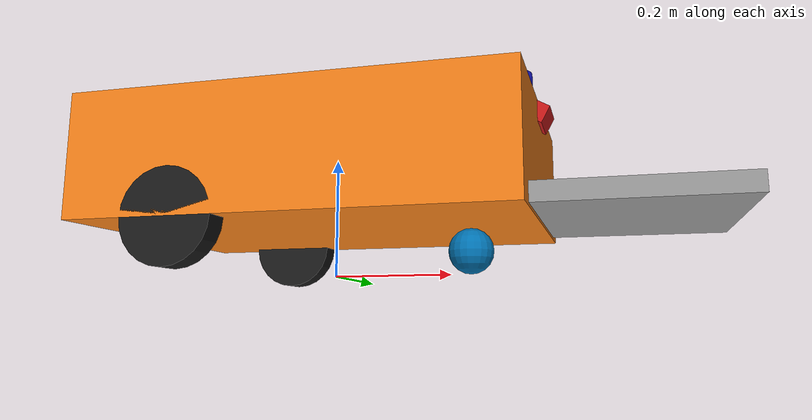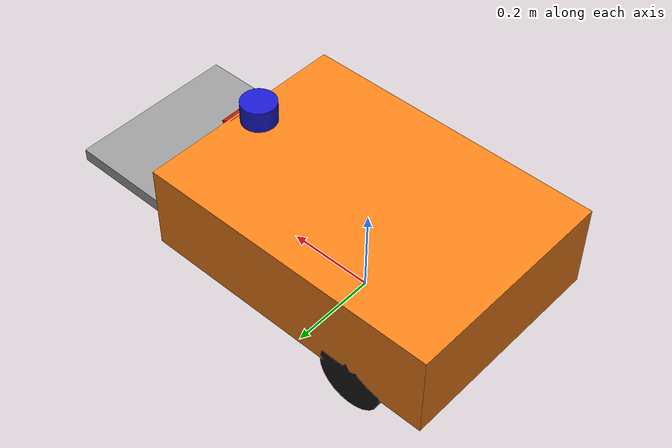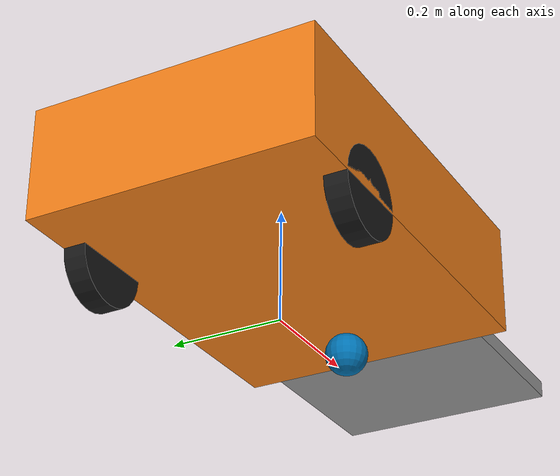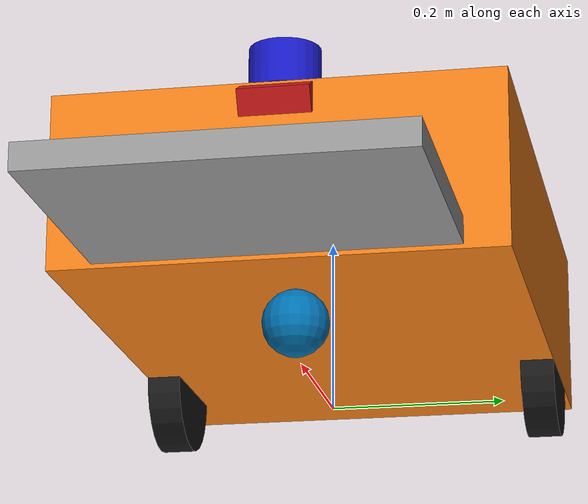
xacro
<?xml version="1.0"?>
<!-- CargoBot - TEKNOFEST 2026 SRUY otonom forklift mobil robot -->
<!-- Diferansiyel surus + 2D lidar + kamera + forklift catali (prismatic) -->
<robot name="cargobot" xmlns:xacro="http://ros.org/wiki/xacro">

  <!-- ===================== Parametreler ===================== -->
  <xacro:property name="base_len"   value="0.70"/>   <!-- govde uzunluk (m) -->
  <xacro:property name="base_wid"   value="0.50"/>   <!-- govde genislik -->
  <xacro:property name="base_hgt"   value="0.20"/>   <!-- govde yukseklik -->
  <xacro:property name="wheel_r"    value="0.075"/>  <!-- teker yaricap -->
  <xacro:property name="wheel_w"    value="0.04"/>   <!-- teker kalinlik -->
  <xacro:property name="wheel_sep"  value="0.46"/>   <!-- tekerler arasi mesafe -->
  <xacro:property name="mass_base"  value="20.0"/>

  <xacro:macro name="box_inertia" params="m x y z">
    <inertial>
      <mass value="${m}"/>
      <inertia ixx="${m*(y*y+z*z)/12.0}" ixy="0" ixz="0"
               iyy="${m*(x*x+z*z)/12.0}" iyz="0"
               izz="${m*(x*x+y*y)/12.0}"/>
    </inertial>
  </xacro:macro>

  <xacro:macro name="cyl_inertia" params="m r l">
    <inertial>
      <mass value="${m}"/>
      <inertia ixx="${m*(3*r*r+l*l)/12.0}" ixy="0" ixz="0"
               iyy="${m*(3*r*r+l*l)/12.0}" iyz="0"
               izz="${m*r*r/2.0}"/>
    </inertial>
  </xacro:macro>

  <!-- ===================== Govde ===================== -->
  <link name="base_footprint"/>

  <link name="base_link">
    <visual>
      <geometry><box size="${base_len} ${base_wid} ${base_hgt}"/></geometry>
      <material name="orange"><color rgba="0.95 0.5 0.1 1"/></material>
    </visual>
    <collision>
      <geometry><box size="${base_len} ${base_wid} ${base_hgt}"/></geometry>
    </collision>
    <xacro:box_inertia m="${mass_base}" x="${base_len}" y="${base_wid}" z="${base_hgt}"/>
  </link>

  <joint name="base_joint" type="fixed">
    <parent link="base_footprint"/>
    <child link="base_link"/>
    <origin xyz="0 0 ${wheel_r + base_hgt/2}"/>
  </joint>

  <!-- ===================== Tahrik tekerleri ===================== -->
  <xacro:macro name="drive_wheel" params="name y">
    <link name="${name}_link">
      <visual>
        <origin rpy="1.5708 0 0"/>
        <geometry><cylinder radius="${wheel_r}" length="${wheel_w}"/></geometry>
        <material name="black"><color rgba="0.1 0.1 0.1 1"/></material>
      </visual>
      <collision>
        <origin rpy="1.5708 0 0"/>
        <geometry><cylinder radius="${wheel_r}" length="${wheel_w}"/></geometry>
      </collision>
      <xacro:cyl_inertia m="1.0" r="${wheel_r}" l="${wheel_w}"/>
    </link>
    <joint name="${name}_joint" type="continuous">
      <parent link="base_link"/>
      <child link="${name}_link"/>
      <origin xyz="${-base_len/4} ${y} ${-base_hgt/2}"/>
      <axis xyz="0 1 0"/>
    </joint>
  </xacro:macro>

  <xacro:drive_wheel name="left_wheel"  y="${ wheel_sep/2}"/>
  <xacro:drive_wheel name="right_wheel" y="${-wheel_sep/2}"/>

  <!-- ===================== Castor (on serbest teker) ===================== -->
  <link name="caster_link">
    <visual><geometry><sphere radius="${wheel_r/2}"/></geometry></visual>
    <collision>
      <geometry><sphere radius="${wheel_r/2}"/></geometry>
      <surface><friction><ode><mu>0.0</mu><mu2>0.0</mu2></ode></friction></surface>
    </collision>
    <inertial><mass value="0.2"/>
      <inertia ixx="1e-4" ixy="0" ixz="0" iyy="1e-4" iyz="0" izz="1e-4"/>
    </inertial>
  </link>
  <joint name="caster_joint" type="fixed">
    <parent link="base_link"/>
    <child link="caster_link"/>
    <origin xyz="${base_len/3} 0 ${-base_hgt/2 - wheel_r/2}"/>
  </joint>

  <!-- ===================== Forklift catali (prismatic - dikey) ===================== -->
  <link name="fork_link">
    <visual>
      <geometry><box size="0.30 0.40 0.03"/></geometry>
      <material name="grey"><color rgba="0.6 0.6 0.6 1"/></material>
    </visual>
    <collision><geometry><box size="0.30 0.40 0.03"/></geometry></collision>
    <xacro:box_inertia m="2.0" x="0.30" y="0.40" z="0.03"/>
  </link>
  <joint name="fork_joint" type="prismatic">
    <parent link="base_link"/>
    <child link="fork_link"/>
    <origin xyz="${base_len/2 + 0.15} 0 ${-base_hgt/2 + 0.02}"/>
    <axis xyz="0 0 1"/>
    <limit lower="0.0" upper="0.25" effort="200" velocity="0.1"/>
  </joint>

  <!-- ===================== 2D Lidar ===================== -->
  <link name="laser_link">
    <visual><geometry><cylinder radius="0.04" length="0.05"/></geometry>
      <material name="blue"><color rgba="0.1 0.1 0.8 1"/></material></visual>
    <collision><geometry><cylinder radius="0.04" length="0.05"/></geometry></collision>
    <xacro:cyl_inertia m="0.2" r="0.04" l="0.05"/>
  </link>
  <joint name="laser_joint" type="fixed">
    <parent link="base_link"/>
    <child link="laser_link"/>
    <origin xyz="${base_len/2 - 0.05} 0 ${base_hgt/2 + 0.03}"/>
  </joint>

  <!-- ===================== Kamera (cizgi takibi + QR) ===================== -->
  <link name="camera_link">
    <visual><geometry><box size="0.03 0.08 0.03"/></geometry>
      <material name="red"><color rgba="0.8 0.1 0.1 1"/></material></visual>
  </link>
  <joint name="camera_joint" type="fixed">
    <parent link="base_link"/>
    <child link="camera_link"/>
    <!-- one bakacak ve hafif asagi egik: zemindeki cizgi/QR icin -->
    <origin xyz="${base_len/2} 0 ${base_hgt/2 - 0.02}" rpy="0 0.5 0"/>
  </joint>
  <link name="camera_optical_link"/>
  <joint name="camera_optical_joint" type="fixed">
    <parent link="camera_link"/>
    <child link="camera_optical_link"/>
    <origin rpy="-1.5708 0 -1.5708"/>
  </joint>

  <!-- IMU -->
  <link name="imu_link"/>
  <joint name="imu_joint" type="fixed">
    <parent link="base_link"/><child link="imu_link"/>
    <origin xyz="0 0 0"/>
  </joint>

  <!-- ===================== Gazebo eklentileri ===================== -->
  <xacro:include filename="$(find cargobot_description)/urdf/cargobot.gazebo.xacro"/>

</robot>
